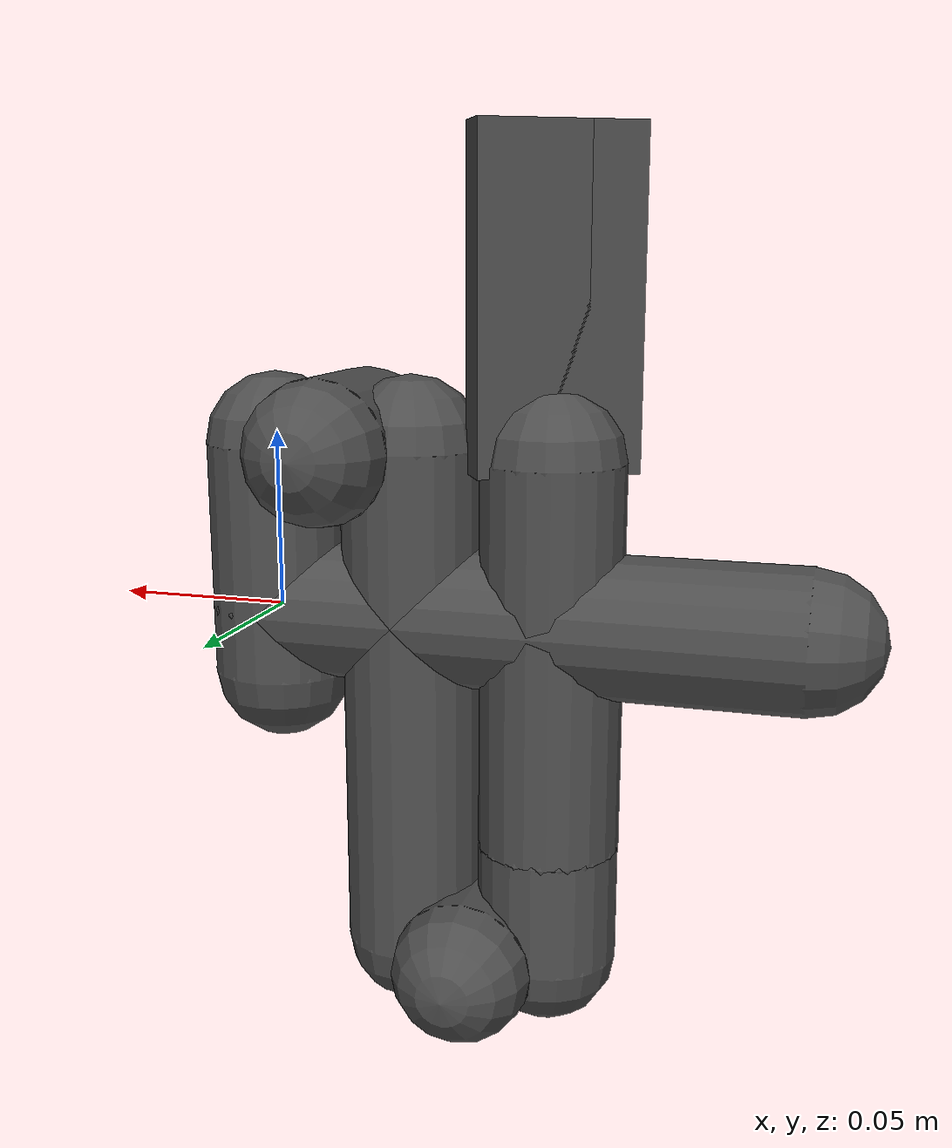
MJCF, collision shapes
<mujoco model="alpha_5_example">
  <compiler meshdir="./meshes" angle="radian" balanceinertia="true" discardvisual="false" inertiafromgeom="true" />

  <asset>
    <mesh name="M3-INLINE" file="M3-INLINE.stl"/>
    <mesh name="M2-1-1" file="M2-1-1.stl"/>
    <mesh name="M2" file="M2.stl"/>
    <mesh name="M2-1-3" file="M2-1-3.stl"/>
    <mesh name="RS1-100-101-123" file="RS1-100-101-123.stl"/>
    <mesh name="RS1-124" file="RS1-124.stl"/>
    <mesh name="RS1-130" file="RS1-130.stl"/>
    <mesh name="RS1-139" file="RS1-139.stl"/>
  </asset>

  <worldbody>
    <geom type="mesh" contype="0" conaffinity="0" group="1" density="0" rgba="0.3 0.3 0.3 1" mesh="M3-INLINE"/>
    <geom size="0.02 0.075" pos="-0.075 0 0" quat="0.707123 0 0.70709 0" type="capsule" rgba="0.3 0.3 0.3 1"/>
    <body name="alpha_m2_1_1_link" pos="0 0 0.014">
      <inertial pos="0 0 0" quat="-0.0916368 0.728825 0.0928578 0.672157" mass="0.194" diaginertia="0.00305743 0.00305743 0.00305743"/>
      <joint name="alpha_axis_e" pos="0 0 0" axis="0 0 1" range="-1.5 1.5" actuatorfrcrange="-9 9" ref="3.14" />
      <geom type="mesh" contype="0" conaffinity="0" group="1" density="0" rgba="0.3 0.3 0.3 1" mesh="M2-1-1"/>
      <geom size="0.02 0.033" type="capsule" rgba="0.3 0.3 0.3 1"/>
      <body name="alpha_m2_joint_link" pos="-0.02 0 0.033">
        <inertial pos="0 0 0" quat="-0.0583938 0.71276 0.00651001 0.698943" mass="0.429" diaginertia="0.00891764 0.00874922 0.000797739"/>
        <joint name="alpha_axis_d" pos="0 0 0" axis="0 1 0" range="0 3.8" actuatorfrcrange="-9 9"/>
        <geom type="mesh" contype="0" conaffinity="0" group="1" density="0" rgba="0.3 0.3 0.3 1" mesh="M2"/>
        <geom size="0.02 0.0725" pos="-0.02 0 -0.0725" type="capsule" rgba="0.3 0.3 0.3 1"/>
        <geom size="0.02 0.02" quat="0.707141 0.707073 0 0" type="capsule" rgba="0.3 0.3 0.3 1"/>
        <geom size="0.02 0.02" pos="-0.04 0 -0.1453" quat="0.707141 0.707073 0 0" type="capsule" rgba="0.3 0.3 0.3 1"/>
        <body name="alpha_m2_1_2_link" pos="-0.04 0 -0.1453" quat="1.32679e-06 0 0 1">
          <inertial pos="0 0 0" mass="0.115" diaginertia="0.4 0.4 0.2"/>
          <joint name="alpha_axis_c" pos="0 0 0" axis="0 1 0" range="0 3.5" actuatorfrcrange="-9 9"/>
          <geom type="mesh" contype="0" conaffinity="0" group="1" density="0" rgba="0.3 0.3 0.3 1" mesh="M2-1-3"/>
          <geom size="0.02 0.0165" pos="0.02 0 0.0165" type="capsule" rgba="0.3 0.3 0.3 1"/>
          <body name="alpha_m1_link" pos="0.02 0 0.033" quat="0.500002 0 0 0.866024">
            <inertial pos="0 0 0" mass="0.333" diaginertia="0.4 0.4 0.2"/>
            <joint name="alpha_axis_b" pos="0 0 0" axis="0 0 -1" range="0 6.2" actuatorfrcrange="-9 9"/>
            <geom pos="0 0 0" quat="0.707141 0 -0.707073 0" type="mesh" contype="0" conaffinity="0" group="1" density="0" rgba="0.3 0.3 0.3 1" mesh="RS1-100-101-123"/>
            <geom size="0.02 0.054875" pos="0 0 0.054875" type="capsule" rgba="0.3 0.3 0.3 1"/>
            <geom type="mesh" contype="0" conaffinity="0" group="1" density="0" rgba="0.3 0.3 0.3 1" mesh="RS1-124"/>
            <body name="alpha_push_rod" pos="0 0 0.10875">
              <inertial pos="0 0 0" mass="0.01" diaginertia="0.000001 0.000001 0.000001"/>
              <joint name="alpha_axis_a" pos="0 0 0" axis="0 0 1" type="slide" range="0 0.015" actuatorfrcrange="-10 10"/>
            </body>
            <body name="alpha_standard_jaws_rs1_130_link" pos="0 0.0155 0.10665">
              <inertial pos="0 0 0" mass="0.01" diaginertia="0.4 0.4 0.2"/>
              <joint name="alpha_standard_jaws_rs1_130_joint" pos="0 0 0" axis="-1 0 0" range="0 0.5" actuatorfrcrange="-10 10"/>
              <geom type="mesh" contype="0" conaffinity="0" group="1" density="0" rgba="0.3 0.3 0.3 1" mesh="RS1-130"/>
              <geom size="0.006 0.015 0.045" pos="0 -0.008 0.045" type="box" rgba="0.3 0.3 0.3 1"/>
            </body>
            <body name="alpha_standard_jaws_rs1_139_link" pos="0 -0.0155 0.10665">
              <inertial pos="0 0 0" mass="0.01" diaginertia="0.4 0.4 0.2"/>
              <joint name="alpha_standard_jaws_rs1_139_joint" pos="0 0 0" axis="1 0 0" range="0 0.5" actuatorfrcrange="-10 10"/>
              <geom type="mesh" contype="0" conaffinity="0" group="1" density="0" rgba="0.3 0.3 0.3 1" mesh="RS1-139"/>
              <geom size="0.006 0.015 0.045" pos="0 0.008 0.045" type="box" rgba="0.3 0.3 0.3 1"/>
            </body>
          </body>
        </body>
      </body>
    </body>
  </worldbody>
  <actuator>
    <motor ctrllimited="true" ctrlrange="-0.5 0.5" gear="10" joint="alpha_axis_e" name="alpha_axis_e_joint"/>
  </actuator>
  <actuator>
    <motor ctrllimited="true" ctrlrange="-0.5 0.5" gear="10" joint="alpha_axis_d" name="alpha_axis_d_joint"/>
  </actuator>
  <actuator>
    <motor ctrllimited="true" ctrlrange="-0.5 0.5" gear="10" joint="alpha_axis_c" name="alpha_axis_c_joint"/>
  </actuator>
  <actuator>
    <motor ctrllimited="true" ctrlrange="-0.5 0.5" gear="10" joint="alpha_axis_b" name="alpha_axis_b_joint"/>
  </actuator>
  <actuator>
    <motor ctrllimited="true" ctrlrange="-0.5 0.5" gear="10" joint="alpha_axis_a" name="alpha_axis_a_joint"/>
  </actuator>
</mujoco>
